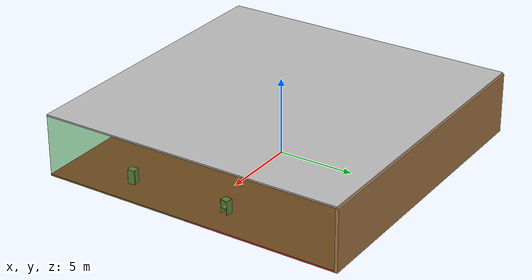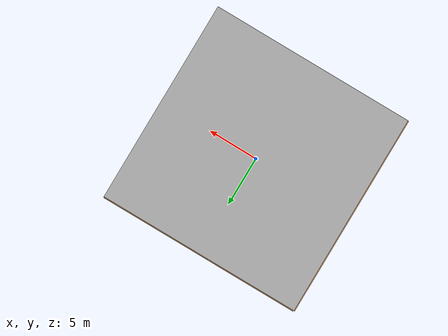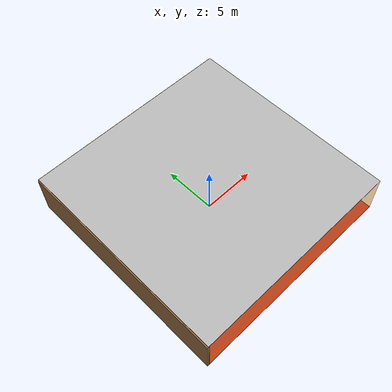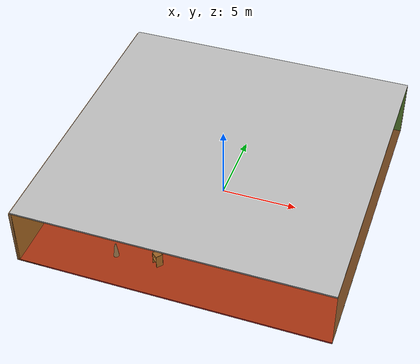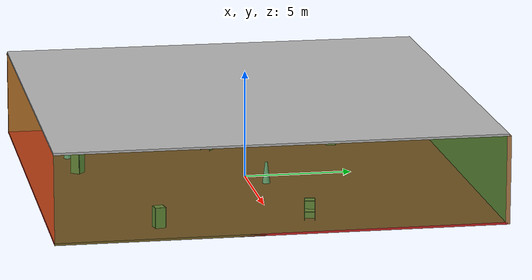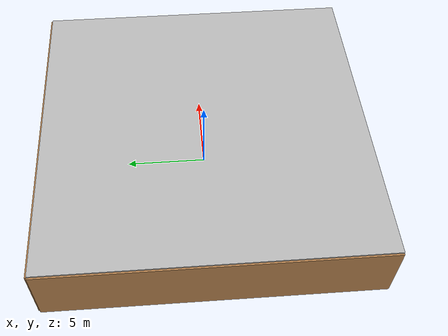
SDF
<sdf version="1.4">
 <world name="default">
  <physics type="ode">
   <max_step_size>0.001</max_step_size>
   <real_time_factor>1</real_time_factor>
   <real_time_update_rate>1000</real_time_update_rate>
   <gravity>0 0 -9.8</gravity>
  </physics>
  <scene><ambient>0.4 0.4 0.4 1</ambient><background>0.7 0.7 0.7 1</background><shadows>1</shadows></scene>
  <model name="Surrounding">
   <static>1</static>
   <link name="Ceiling">
    <collision name="Ceiling_Collision"><geometry><box><size>20 20 0.1</size></box></geometry></collision>
    <visual name="Ceiling_Visual">
     <geometry><box><size>20 20 0.1</size></box></geometry>
     <material>
      <script><uri>file://media/materials/scripts/gazebo.material</uri><name>Gazebo/LightOn</name></script>
     </material>
    </visual>
    <pose>0 0 4.05 0 0 0</pose>
   </link>
   <link name="Wall_South">
    <collision name="Wall_South_Collision">
     <geometry><box><size>20 0 4</size></box></geometry>
     <pose>0 0 2 0 -0 0</pose>
    </collision>
    <visual name="Wall_South_Visual">
     <pose>0 0 2 0 -0 0</pose>
     <geometry><box><size>20 0 4</size></box></geometry>
     <material>
      <script>
       <uri>file://media/materials/scripts/gazebo.material</uri>
       <name>Gazebo/OrangeTransparent</name>
      </script>
     </material>
    </visual>
    <velocity_decay><linear>0</linear><angular>0</angular></velocity_decay>
    <pose>0 -10 0 0 -0 0</pose>
   </link>
   <link name="Wall_East">
    <collision name="Wall_21_Collision">
     <geometry><box><size>20 0 4</size></box></geometry>
     <pose>0 0 2 0 -0 0</pose>
    </collision>
    <visual name="Wall_21_Visual">
     <pose>0 0 2 0 -0 0</pose>
     <geometry><box><size>20 0 4</size></box></geometry>
     <material>
      <script><uri>file://media/materials/scripts/gazebo.material</uri><name>Gazebo/GreenTransparent</name></script>
     </material>
    </visual>
    <velocity_decay><linear>0</linear><angular>0</angular></velocity_decay>
    <pose>10 0 0 0 -0 1.5708</pose>
   </link>
   <link name="Wall_North">
    <collision name="Wall_22_Collision">
     <geometry><box><size>20 0.2 4</size></box></geometry>
     <pose>0 0 2 0 -0 0</pose>
    </collision>
    <visual name="Wall_22_Visual">
     <pose>0 0 2 0 -0 0</pose>
     <geometry><box><size>20 0.2 4</size></box></geometry>
     <material>
      <script><uri>file://media/materials/scripts/gazebo.material</uri><name>Gazebo/Wood</name></script>
     </material>
    </visual>
    <velocity_decay><linear>0</linear><angular>0</angular></velocity_decay>
    <pose>0 10 0 0 -0 0</pose>
   </link>
   <link name="Wall_West">
    <collision name="Wall_23_Collision">
     <geometry><box><size>20 0.2 4</size></box></geometry>
     <pose>0 0 2 0 -0 0</pose>
    </collision>
    <visual name="Wall_23_Visual">
     <pose>0 0 2 0 -0 0</pose>
     <geometry><box><size>20 0.2 4</size></box></geometry>
     <material>
      <script><uri>file://media/materials/scripts/gazebo.material</uri><name>Gazebo/WoodFloor</name></script>
     </material>
    </visual>
    <velocity_decay><linear>0</linear><angular>0</angular></velocity_decay>
    <pose>-10 0 0 0 0 -1.5708</pose>
   </link>
   <link name="Ground_link">
    <collision name="collision">
     <pose>0 0 .05 0 -0 0</pose>
     <geometry><box><size>20 20 0.1</size></box></geometry>
    </collision>
    <visual name="visual">
     <pose>0 0 .05 0 -0 0</pose>
     <geometry><box><size>20 20 0.1</size></box></geometry>
     <material>
      <script><uri>file://media/materials/scripts/gazebo.material</uri><name>Gazebo/RedBright</name></script>
     </material>
    </visual>
   </link>
   <static>1</static>
  </model>
  <spherical_coordinates>
   <surface_model>EARTH_WGS84</surface_model>
   <latitude_deg>0</latitude_deg>
   <longitude_deg>0</longitude_deg>
   <elevation>0</elevation>
   <heading_deg>0</heading_deg>
  </spherical_coordinates>
  <light name="lightball_0" type="diffuse">
   <diffuse>0.8 0.8 0.8 1</diffuse>
   <specular>0.2 0.2 0.2 1</specular>
   <attenuation>
    <range>100</range>
    <constant>0.7</constant>
    <linear>0.01</linear>
    <quadratic>0.001</quadratic>
   </attenuation>
   <direction>-0.5 0.1 -0.9</direction>
   <pose>5.04702491852 -0.901679488993 2.44530517789 0 0 0</pose>
  </light>
  <light name="lightball_1" type="diffuse">
   <diffuse>0.8 0.8 0.8 1</diffuse>
   <specular>0.2 0.2 0.2 1</specular>
   <attenuation>
    <range>100</range>
    <constant>0.7</constant>
    <linear>0.01</linear>
    <quadratic>0.001</quadratic>
   </attenuation>
   <direction>-0.5 0.1 -0.9</direction>
   <pose>2.78569614144 1.34559466796 3.03479543637 0 0 0</pose>
  </light>
  <light name="lightball_2" type="diffuse">
   <diffuse>0.8 0.8 0.8 1</diffuse>
   <specular>0.2 0.2 0.2 1</specular>
   <attenuation>
    <range>100</range>
    <constant>0.7</constant>
    <linear>0.01</linear>
    <quadratic>0.001</quadratic>
   </attenuation>
   <direction>-0.5 0.1 -0.9</direction>
   <pose>-6.10586795638 -6.31388913392 2.41158984618 0 0 0</pose>
  </light>
  <light name="lightball_3" type="diffuse">
   <diffuse>0.8 0.8 0.8 1</diffuse>
   <specular>0.2 0.2 0.2 1</specular>
   <attenuation>
    <range>100</range>
    <constant>0.7</constant>
    <linear>0.01</linear>
    <quadratic>0.001</quadratic>
   </attenuation>
   <direction>-0.5 0.1 -0.9</direction>
   <pose>-3.46048783587 -6.31372913993 0.924793437574 0 0 0</pose>
  </light>
  <light name="lightball_4" type="diffuse">
   <diffuse>0.8 0.8 0.8 1</diffuse>
   <specular>0.2 0.2 0.2 1</specular>
   <attenuation>
    <range>100</range>
    <constant>0.7</constant>
    <linear>0.01</linear>
    <quadratic>0.001</quadratic>
   </attenuation>
   <direction>-0.5 0.1 -0.9</direction>
   <pose>8.77151145117 -5.16044777 2.04110611064 0 0 0</pose>
  </light>
  <light name="lightball_5" type="diffuse">
   <diffuse>0.8 0.8 0.8 1</diffuse>
   <specular>0.2 0.2 0.2 1</specular>
   <attenuation>
    <range>100</range>
    <constant>0.7</constant>
    <linear>0.01</linear>
    <quadratic>0.001</quadratic>
   </attenuation>
   <direction>-0.5 0.1 -0.9</direction>
   <pose>-7.37391985513 0.519805944594 0.941222128313 0 0 0</pose>
  </light>
  <light name="lightball_6" type="diffuse">
   <diffuse>0.8 0.8 0.8 1</diffuse>
   <specular>0.2 0.2 0.2 1</specular>
   <attenuation>
    <range>100</range>
    <constant>0.7</constant>
    <linear>0.01</linear>
    <quadratic>0.001</quadratic>
   </attenuation>
   <direction>-0.5 0.1 -0.9</direction>
   <pose>7.35173313829 -1.31593492657 3.87158867714 0 0 0</pose>
  </light>
  <light name="lightball_7" type="diffuse">
   <diffuse>0.8 0.8 0.8 1</diffuse>
   <specular>0.2 0.2 0.2 1</specular>
   <attenuation>
    <range>100</range>
    <constant>0.7</constant>
    <linear>0.01</linear>
    <quadratic>0.001</quadratic>
   </attenuation>
   <direction>-0.5 0.1 -0.9</direction>
   <pose>0.049966349547 -3.69739868306 3.89589833154 0 0 0</pose>
  </light>
  <light name="lightball_8" type="diffuse">
   <diffuse>0.8 0.8 0.8 1</diffuse>
   <specular>0.2 0.2 0.2 1</specular>
   <attenuation>
    <range>100</range>
    <constant>0.7</constant>
    <linear>0.01</linear>
    <quadratic>0.001</quadratic>
   </attenuation>
   <direction>-0.5 0.1 -0.9</direction>
   <pose>-3.56001355006 -0.149088761452 3.57211068817 0 0 0</pose>
  </light>
  <light name="lightball_9" type="diffuse">
   <diffuse>0.8 0.8 0.8 1</diffuse>
   <specular>0.2 0.2 0.2 1</specular>
   <attenuation>
    <range>100</range>
    <constant>0.7</constant>
    <linear>0.01</linear>
    <quadratic>0.001</quadratic>
   </attenuation>
   <direction>-0.5 0.1 -0.9</direction>
   <pose>-3.11182910562 -6.20680209915 2.33846912196 0 0 0</pose>
  </light>
  <include>
   <uri>model://construction_cone</uri>
   <pose>-7.80395702761 1.88714378584 0 0 0 2.55494987537</pose>
  </include>
  <include>
   <uri>model://construction_cone</uri>
   <pose>-4.3779222128 -7.76102761715 0 0 0 0.682038635746</pose>
  </include>
  <include><uri>model://cabinet</uri><pose>-4.86912595328 -1.0004103536 0 0 0 2.52773682883</pose></include>
  <include><uri>model://cabinet</uri><pose>-4.94262303535 5.02995083586 0 0 0 1.35488117603</pose></include>
  <include><uri>model://cabinet</uri><pose>-1.66747631936 -7.59904632627 0 0 0 0.880930217647</pose></include>
  <include>
   <uri>model://construction_cone</uri>
   <pose>1.65005309286 0.710597764705 0 0 0 1.36628564413</pose>
  </include>
  <include><uri>model://cabinet</uri><pose>8.13398114809 -5.19917334378 0 0 0 0.152173837793</pose></include>
  <include><uri>model://cabinet</uri><pose>8.08952239851 1.5015668669 0 0 0 2.95114111427</pose></include>
 </world>
</sdf>

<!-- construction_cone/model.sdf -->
<sdf version="1.5">
  <model name="Construction Cone">
    <link name="link">
      <collision name="collision">
        <geometry>
          <mesh>
            <scale>10 10 10</scale>
            <uri>file://isr-testbed/construction_cone/meshes/construction_cone.dae</uri>
          </mesh>
        </geometry>
      </collision>
      <visual name="visual">
        <geometry>
          <mesh>
            <scale>10 10 10</scale>
            <uri>file://isr-testbed/construction_cone/meshes/construction_cone.dae</uri>
          </mesh>
        </geometry>
      </visual>
    </link>
  </model>
</sdf>

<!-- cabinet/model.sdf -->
<sdf version="1.5">
  <model name="cabinet">
    <static>true</static>
    <link name="cabinet_bottom_plate">
      <inertial>
        <pose>0 0 -1 0 0 0</pose>
        <inertia>
          <ixx>2.050000</ixx>
          <ixy>0</ixy>
          <ixz>0</ixz>
          <iyy>2.050000</iyy>
          <iyz>0</iyz>
          <izz>2.050000</izz>
        </inertia>
        <mass>25.000000</mass>
      </inertial>
      <collision name="cabinet_bottom_plate_geom">
        <pose>0 0 0.010000 0 0 0</pose>
        <geometry>
          <box>
            <size>0.450000 0.450000 0.020000</size>
          </box>
        </geometry>
      </collision>
      <visual name="cabinet_bottom_plate_geom_visual">
        <pose>0 0 0.010000 0 0 0</pose>
        <geometry>
          <box>
            <size>0.450000 0.450000 0.020000</size>
          </box>
        </geometry>
        <material>
          <script>
            <uri>model://media/materials/scripts/gazebo.material</uri>
            <name>Gazebo/Wood</name>
          </script>
        </material>
      </visual>
      <collision name="cabinet_bottom_plate_geom_cabinet_back_plate">
        <pose>0.235000 0 0.510000 0 0 0</pose>
        <geometry>
          <box>
            <size>0.020000 0.450000 1.020000</size>
          </box>
        </geometry>
      </collision>
      <visual name="cabinet_bottom_plate_geom_cabinet_back_plate_visual">
        <pose>0.235000 0 0.510000 0 0 0</pose>
        <geometry>
          <box>
            <size>0.020000 0.450000 1.020000</size>
          </box>
        </geometry>
        <material>
          <script>
            <uri>model://media/materials/scripts/gazebo.material</uri>
            <name>Gazebo/Wood</name>
          </script>
        </material>
      </visual>
      <collision name="cabinet_bottom_plate_geom_cabinet_left_plate">
        <pose>0 0.235000 0.510000 0 0 0</pose>
        <geometry>
          <box>
            <size>0.450000 0.020000 1.020000</size>
          </box>
        </geometry>
      </collision>
      <visual name="cabinet_bottom_plate_geom_cabinet_left_plate_visual">
        <pose>0 0.235000 0.510000 0 0 0</pose>
        <geometry>
          <box>
            <size>0.450000 0.020000 1.020000</size>
          </box>
        </geometry>
        <material>
          <script>
            <uri>model://media/materials/scripts/gazebo.material</uri>
            <name>Gazebo/Wood</name>
          </script>
        </material>
      </visual>
      <collision name="cabinet_bottom_plate_geom_cabinet_middle_plate">
        <pose>0 0 0.510000 0 0 0</pose>
        <geometry>
          <box>
            <size>0.450000 0.450000 0.020000</size>
          </box>
        </geometry>
      </collision>
      <visual name="cabinet_bottom_plate_geom_cabinet_middle_plate_visual">
        <pose>0 0 0.510000 0 0 0</pose>
        <geometry>
          <box>
            <size>0.450000 0.450000 0.020000</size>
          </box>
        </geometry>
        <material>
          <script>
            <uri>model://media/materials/scripts/gazebo.material</uri>
            <name>Gazebo/Wood</name>
          </script>
        </material>
      </visual>
      <collision name="cabinet_bottom_plate_geom_cabinet_right_plate">
        <pose>0 -0.235000 0.510000 0 0 0</pose>
        <geometry>
          <box>
            <size>0.450000 0.020000 1.020000</size>
          </box>
        </geometry>
      </collision>
      <visual name="cabinet_bottom_plate_geom_cabinet_right_plate_visual">
        <pose>0 -0.235000 0.510000 0 0 0</pose>
        <geometry>
          <box>
            <size>0.450000 0.020000 1.020000</size>
          </box>
        </geometry>
        <material>
          <script>
            <uri>model://media/materials/scripts/gazebo.material</uri>
            <name>Gazebo/Wood</name>
          </script>
        </material>
      </visual>
      <collision name="cabinet_bottom_plate_geom_cabinet_top_plate">
        <pose>0 0 1.010000 0 0 0</pose>
        <geometry>
          <box>
            <size>0.450000 0.450000 0.020000</size>
          </box>
        </geometry>
      </collision>
      <visual name="cabinet_bottom_plate_geom_cabinet_top_plate_visual">
        <pose>0 0 1.010000 0 0 0</pose>
        <geometry>
          <box>
            <size>0.450000 0.450000 0.020000</size>
          </box>
        </geometry>
        <material>
          <script>
            <uri>model://media/materials/scripts/gazebo.material</uri>
            <name>Gazebo/Wood</name>
          </script>
        </material>
      </visual>
    </link>
  </model>
</sdf>
